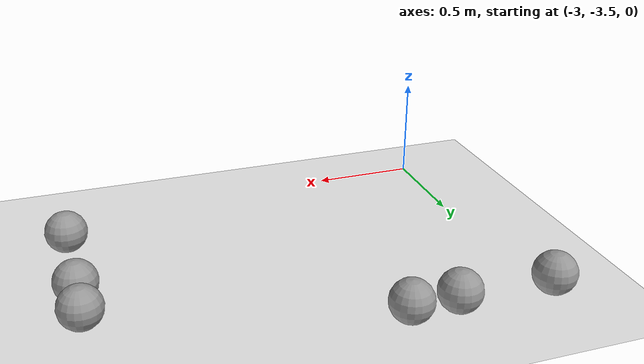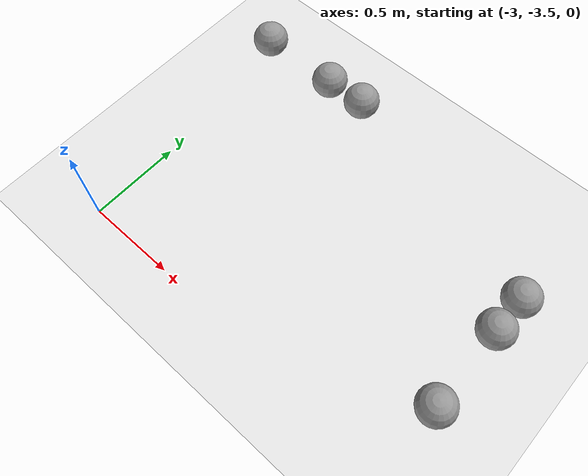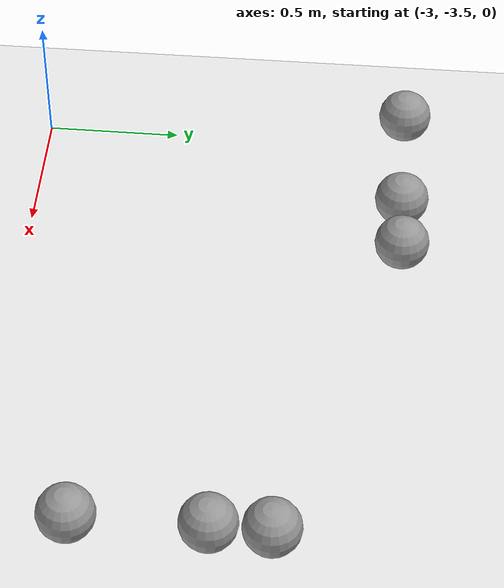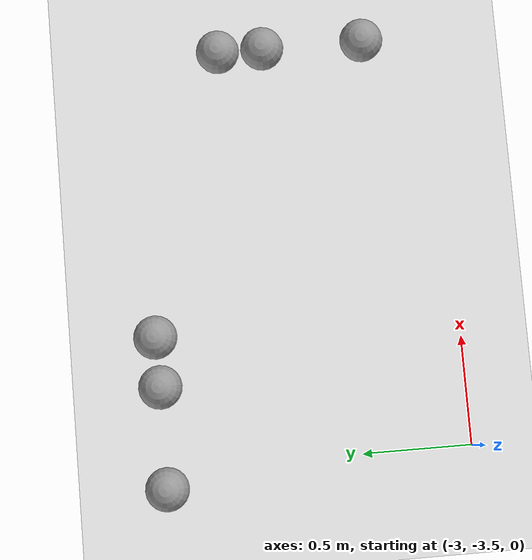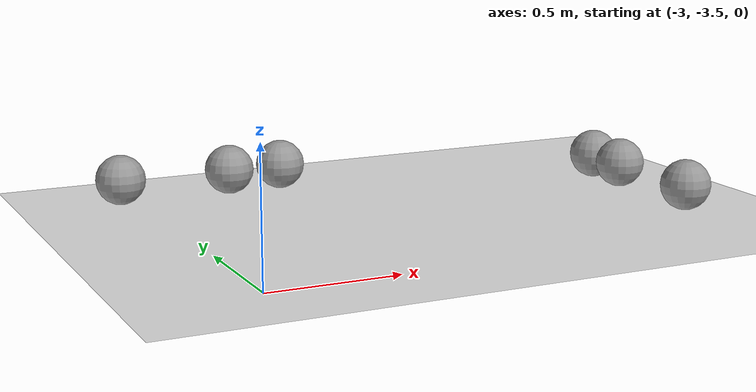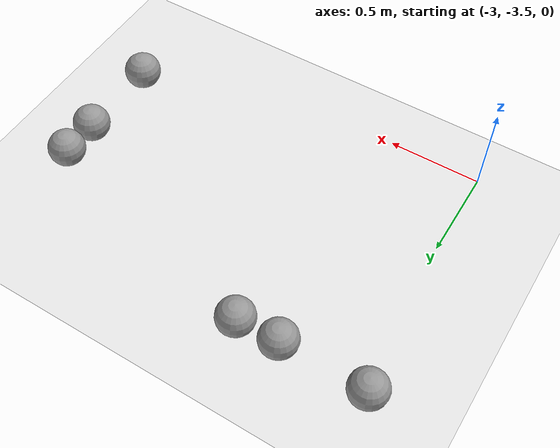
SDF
<sdf version="1.7">
 <world name="default">
  <model name="ground_plane">
   <static>1</static>
   <link name="link">
    <collision name="collision">
     <geometry><plane><normal>0 0 1</normal><size>100 100</size></plane></geometry>
     <surface>
      <contact><collide_bitmask>65535</collide_bitmask></contact>
      <friction><ode><mu>100</mu><mu2>50</mu2></ode></friction>
     </surface>
    </collision>
    <visual name="visual">
     <cast_shadows>0</cast_shadows>
     <geometry><plane><normal>0 0 1</normal><size>100 100</size></plane></geometry>
     <material>
      <script><uri>file://media/materials/scripts/gazebo.material</uri><name>Gazebo/White</name></script>
     </material>
    </visual>
   </link>
  </model>
  <model name="sphere_10">
   <link name="link_0">
    <inertial>
     <mass>1</mass>
     <inertia><ixx>0.1</ixx><ixy>0</ixy><ixz>0</ixz><iyy>0.1</iyy><iyz>0</iyz><izz>0.1</izz></inertia>
    </inertial>
    <visual name="visual">
     <geometry><sphere><radius>0.1</radius></sphere></geometry>
     <material>
      <lighting>1</lighting>
      <script><uri>file://media/materials/scripts/gazebo.material</uri><name>Gazebo/Grey</name></script>
      <shader type="pixel"><normal_map>__default__</normal_map></shader>
      <ambient>0.3 0.3 0.3 1</ambient>
      <diffuse>0.7 0.7 0.7 1</diffuse>
      <specular>0.01 0.01 0.01 1</specular>
      <emissive>0 0 0 1</emissive>
     </material>
    </visual>
    <collision name="collision">
     <geometry><sphere><radius>0.1</radius></sphere></geometry>
     <surface>
      <friction>
       <ode><mu>1</mu><mu2>1</mu2><fdir1>0 0 0</fdir1><slip1>0</slip1><slip2>0</slip2></ode>
       <torsional>
        <coefficient>1</coefficient>
        <patch_radius>0</patch_radius>
        <surface_radius>0</surface_radius>
        <use_patch_radius>1</use_patch_radius>
        <ode><slip>0</slip></ode>
       </torsional>
      </friction>
      <bounce><restitution_coefficient>0</restitution_coefficient><threshold>1e+06</threshold></bounce>
      <contact>
       <collide_without_contact>0</collide_without_contact>
       <collide_without_contact_bitmask>1</collide_without_contact_bitmask>
       <collide_bitmask>1</collide_bitmask>
       <ode>
        <soft_cfm>0</soft_cfm>
        <soft_erp>0.2</soft_erp>
        <kp>1e+13</kp>
        <kd>1</kd>
        <max_vel>0.01</max_vel>
        <min_depth>0</min_depth>
       </ode>
       <bullet>
        <split_impulse>1</split_impulse>
        <split_impulse_penetration_threshold>-0.01</split_impulse_penetration_threshold>
        <soft_cfm>0</soft_cfm>
        <soft_erp>0.2</soft_erp>
        <kp>1e+13</kp>
        <kd>1</kd>
       </bullet>
      </contact>
     </surface>
    </collision>
   </link>
   <static>0</static>
   <pose>-1.09342 -3.15905 0.1 0 -0 0</pose>
  </model>
  <model name="sphere_12">
   <link name="link_0">
    <inertial>
     <mass>1</mass>
     <inertia><ixx>0.1</ixx><ixy>0</ixy><ixz>0</ixz><iyy>0.1</iyy><iyz>0</iyz><izz>0.1</izz></inertia>
    </inertial>
    <visual name="visual">
     <geometry><sphere><radius>0.1</radius></sphere></geometry>
     <material>
      <lighting>1</lighting>
      <script><uri>file://media/materials/scripts/gazebo.material</uri><name>Gazebo/Grey</name></script>
      <shader type="pixel"><normal_map>__default__</normal_map></shader>
      <ambient>0.3 0.3 0.3 1</ambient>
      <diffuse>0.7 0.7 0.7 1</diffuse>
      <specular>0.01 0.01 0.01 1</specular>
      <emissive>0 0 0 1</emissive>
     </material>
    </visual>
    <collision name="collision">
     <geometry><sphere><radius>0.1</radius></sphere></geometry>
     <surface>
      <friction>
       <ode><mu>1</mu><mu2>1</mu2><fdir1>0 0 0</fdir1><slip1>0</slip1><slip2>0</slip2></ode>
       <torsional>
        <coefficient>1</coefficient>
        <patch_radius>0</patch_radius>
        <surface_radius>0</surface_radius>
        <use_patch_radius>1</use_patch_radius>
        <ode><slip>0</slip></ode>
       </torsional>
      </friction>
      <bounce><restitution_coefficient>0</restitution_coefficient><threshold>1e+06</threshold></bounce>
      <contact>
       <collide_without_contact>0</collide_without_contact>
       <collide_without_contact_bitmask>1</collide_without_contact_bitmask>
       <collide_bitmask>1</collide_bitmask>
       <ode>
        <soft_cfm>0</soft_cfm>
        <soft_erp>0.2</soft_erp>
        <kp>1e+13</kp>
        <kd>1</kd>
        <max_vel>0.01</max_vel>
        <min_depth>0</min_depth>
       </ode>
       <bullet>
        <split_impulse>1</split_impulse>
        <split_impulse_penetration_threshold>-0.01</split_impulse_penetration_threshold>
        <soft_cfm>0</soft_cfm>
        <soft_erp>0.2</soft_erp>
        <kp>1e+13</kp>
        <kd>1</kd>
       </bullet>
      </contact>
     </surface>
    </collision>
   </link>
   <static>0</static>
   <pose>-1.09448 -2.6955 0.1 0 -0 0</pose>
  </model>
  <model name="sphere_13">
   <link name="link_0">
    <inertial>
     <mass>1</mass>
     <inertia><ixx>0.1</ixx><ixy>0</ixy><ixz>0</ixz><iyy>0.1</iyy><iyz>0</iyz><izz>0.1</izz></inertia>
    </inertial>
    <visual name="visual">
     <geometry><sphere><radius>0.1</radius></sphere></geometry>
     <material>
      <lighting>1</lighting>
      <script><uri>file://media/materials/scripts/gazebo.material</uri><name>Gazebo/Grey</name></script>
      <shader type="pixel"><normal_map>__default__</normal_map></shader>
      <ambient>0.3 0.3 0.3 1</ambient>
      <diffuse>0.7 0.7 0.7 1</diffuse>
      <specular>0.01 0.01 0.01 1</specular>
      <emissive>0 0 0 1</emissive>
     </material>
    </visual>
    <collision name="collision">
     <geometry><sphere><radius>0.1</radius></sphere></geometry>
     <surface>
      <friction>
       <ode><mu>1</mu><mu2>1</mu2><fdir1>0 0 0</fdir1><slip1>0</slip1><slip2>0</slip2></ode>
       <torsional>
        <coefficient>1</coefficient>
        <patch_radius>0</patch_radius>
        <surface_radius>0</surface_radius>
        <use_patch_radius>1</use_patch_radius>
        <ode><slip>0</slip></ode>
       </torsional>
      </friction>
      <bounce><restitution_coefficient>0</restitution_coefficient><threshold>1e+06</threshold></bounce>
      <contact>
       <collide_without_contact>0</collide_without_contact>
       <collide_without_contact_bitmask>1</collide_without_contact_bitmask>
       <collide_bitmask>1</collide_bitmask>
       <ode>
        <soft_cfm>0</soft_cfm>
        <soft_erp>0.2</soft_erp>
        <kp>1e+13</kp>
        <kd>1</kd>
        <max_vel>0.01</max_vel>
        <min_depth>0</min_depth>
       </ode>
       <bullet>
        <split_impulse>1</split_impulse>
        <split_impulse_penetration_threshold>-0.01</split_impulse_penetration_threshold>
        <soft_cfm>0</soft_cfm>
        <soft_erp>0.2</soft_erp>
        <kp>1e+13</kp>
        <kd>1</kd>
       </bullet>
      </contact>
     </surface>
    </collision>
   </link>
   <static>0</static>
   <pose>-1.09339 -2.48857 0.1 0 -0 0</pose>
  </model>
  <model name="sphere_21">
   <link name="link_0">
    <inertial>
     <mass>1</mass>
     <inertia><ixx>0.1</ixx><ixy>0</ixy><ixz>0</ixz><iyy>0.1</iyy><iyz>0</iyz><izz>0.1</izz></inertia>
    </inertial>
    <visual name="visual">
     <geometry><sphere><radius>0.1</radius></sphere></geometry>
     <material>
      <lighting>1</lighting>
      <script><uri>file://media/materials/scripts/gazebo.material</uri><name>Gazebo/Grey</name></script>
      <shader type="pixel"><normal_map>__default__</normal_map></shader>
      <ambient>0.3 0.3 0.3 1</ambient>
      <diffuse>0.7 0.7 0.7 1</diffuse>
      <specular>0.01 0.01 0.01 1</specular>
      <emissive>0 0 0 1</emissive>
     </material>
    </visual>
    <collision name="collision">
     <geometry><sphere><radius>0.1</radius></sphere></geometry>
     <surface>
      <friction>
       <ode><mu>1</mu><mu2>1</mu2><fdir1>0 0 0</fdir1><slip1>0</slip1><slip2>0</slip2></ode>
       <torsional>
        <coefficient>1</coefficient>
        <patch_radius>0</patch_radius>
        <surface_radius>0</surface_radius>
        <use_patch_radius>1</use_patch_radius>
        <ode><slip>0</slip></ode>
       </torsional>
      </friction>
      <bounce><restitution_coefficient>0</restitution_coefficient><threshold>1e+06</threshold></bounce>
      <contact>
       <collide_without_contact>0</collide_without_contact>
       <collide_without_contact_bitmask>1</collide_without_contact_bitmask>
       <collide_bitmask>1</collide_bitmask>
       <ode>
        <soft_cfm>0</soft_cfm>
        <soft_erp>0.2</soft_erp>
        <kp>1e+13</kp>
        <kd>1</kd>
        <max_vel>0.01</max_vel>
        <min_depth>0</min_depth>
       </ode>
       <bullet>
        <split_impulse>1</split_impulse>
        <split_impulse_penetration_threshold>-0.01</split_impulse_penetration_threshold>
        <soft_cfm>0</soft_cfm>
        <soft_erp>0.2</soft_erp>
        <kp>1e+13</kp>
        <kd>1</kd>
       </bullet>
      </contact>
     </surface>
    </collision>
   </link>
   <static>0</static>
   <pose>-2.39552 -2.10485 0.1 0 -0 0</pose>
  </model>
  <model name="sphere_22">
   <link name="link_0">
    <inertial>
     <mass>1</mass>
     <inertia><ixx>0.1</ixx><ixy>0</ixy><ixz>0</ixz><iyy>0.1</iyy><iyz>0</iyz><izz>0.1</izz></inertia>
    </inertial>
    <visual name="visual">
     <geometry><sphere><radius>0.1</radius></sphere></geometry>
     <material>
      <lighting>1</lighting>
      <script><uri>file://media/materials/scripts/gazebo.material</uri><name>Gazebo/Grey</name></script>
      <shader type="pixel"><normal_map>__default__</normal_map></shader>
      <ambient>0.3 0.3 0.3 1</ambient>
      <diffuse>0.7 0.7 0.7 1</diffuse>
      <specular>0.01 0.01 0.01 1</specular>
      <emissive>0 0 0 1</emissive>
     </material>
    </visual>
    <collision name="collision">
     <geometry><sphere><radius>0.1</radius></sphere></geometry>
     <surface>
      <friction>
       <ode><mu>1</mu><mu2>1</mu2><fdir1>0 0 0</fdir1><slip1>0</slip1><slip2>0</slip2></ode>
       <torsional>
        <coefficient>1</coefficient>
        <patch_radius>0</patch_radius>
        <surface_radius>0</surface_radius>
        <use_patch_radius>1</use_patch_radius>
        <ode><slip>0</slip></ode>
       </torsional>
      </friction>
      <bounce><restitution_coefficient>0</restitution_coefficient><threshold>1e+06</threshold></bounce>
      <contact>
       <collide_without_contact>0</collide_without_contact>
       <collide_without_contact_bitmask>1</collide_without_contact_bitmask>
       <collide_bitmask>1</collide_bitmask>
       <ode>
        <soft_cfm>0</soft_cfm>
        <soft_erp>0.2</soft_erp>
        <kp>1e+13</kp>
        <kd>1</kd>
        <max_vel>0.01</max_vel>
        <min_depth>0</min_depth>
       </ode>
       <bullet>
        <split_impulse>1</split_impulse>
        <split_impulse_penetration_threshold>-0.01</split_impulse_penetration_threshold>
        <soft_cfm>0</soft_cfm>
        <soft_erp>0.2</soft_erp>
        <kp>1e+13</kp>
        <kd>1</kd>
       </bullet>
      </contact>
     </surface>
    </collision>
   </link>
   <static>0</static>
   <pose>-2.62218 -2.11134 0.1 0 -0 0</pose>
  </model>
  <model name="sphere_24">
   <link name="link_0">
    <inertial>
     <mass>1</mass>
     <inertia><ixx>0.1</ixx><ixy>0</ixy><ixz>0</ixz><iyy>0.1</iyy><iyz>0</iyz><izz>0.1</izz></inertia>
    </inertial>
    <visual name="visual">
     <geometry><sphere><radius>0.1</radius></sphere></geometry>
     <material>
      <lighting>1</lighting>
      <script><uri>file://media/materials/scripts/gazebo.material</uri><name>Gazebo/Grey</name></script>
      <shader type="pixel"><normal_map>__default__</normal_map></shader>
      <ambient>0.3 0.3 0.3 1</ambient>
      <diffuse>0.7 0.7 0.7 1</diffuse>
      <specular>0.01 0.01 0.01 1</specular>
      <emissive>0 0 0 1</emissive>
     </material>
    </visual>
    <collision name="collision">
     <geometry><sphere><radius>0.1</radius></sphere></geometry>
     <surface>
      <friction>
       <ode><mu>1</mu><mu2>1</mu2><fdir1>0 0 0</fdir1><slip1>0</slip1><slip2>0</slip2></ode>
       <torsional>
        <coefficient>1</coefficient>
        <patch_radius>0</patch_radius>
        <surface_radius>0</surface_radius>
        <use_patch_radius>1</use_patch_radius>
        <ode><slip>0</slip></ode>
       </torsional>
      </friction>
      <bounce><restitution_coefficient>0</restitution_coefficient><threshold>1e+06</threshold></bounce>
      <contact>
       <collide_without_contact>0</collide_without_contact>
       <collide_without_contact_bitmask>1</collide_without_contact_bitmask>
       <collide_bitmask>1</collide_bitmask>
       <ode>
        <soft_cfm>0</soft_cfm>
        <soft_erp>0.2</soft_erp>
        <kp>1e+13</kp>
        <kd>1</kd>
        <max_vel>0.01</max_vel>
        <min_depth>0</min_depth>
       </ode>
       <bullet>
        <split_impulse>1</split_impulse>
        <split_impulse_penetration_threshold>-0.01</split_impulse_penetration_threshold>
        <soft_cfm>0</soft_cfm>
        <soft_erp>0.2</soft_erp>
        <kp>1e+13</kp>
        <kd>1</kd>
       </bullet>
      </contact>
     </surface>
    </collision>
   </link>
   <static>0</static>
   <pose>-3.08021 -2.11051 0.1 0 -0 0</pose>
  </model>
 </world>
</sdf>
